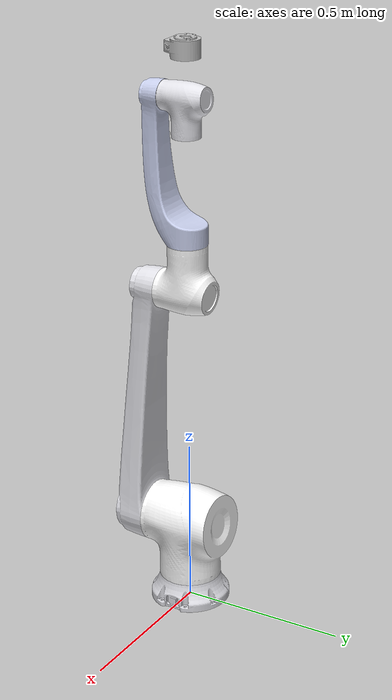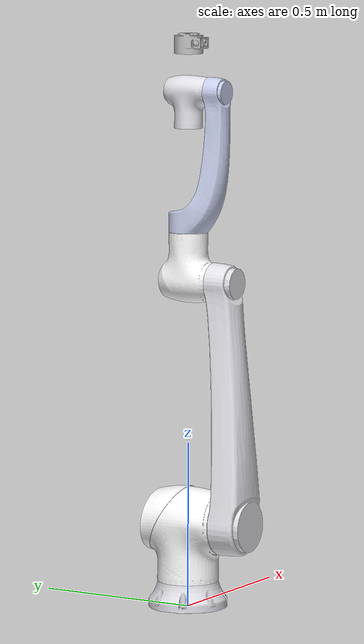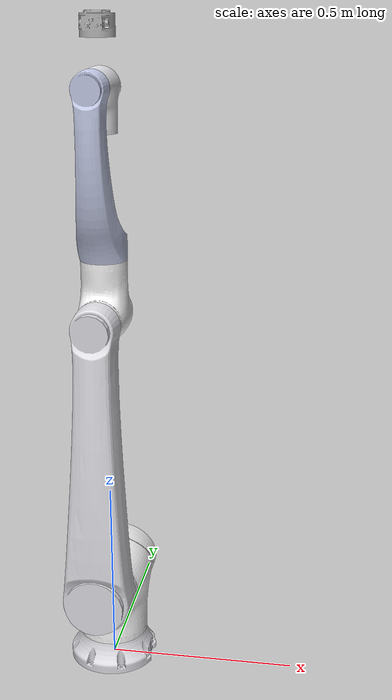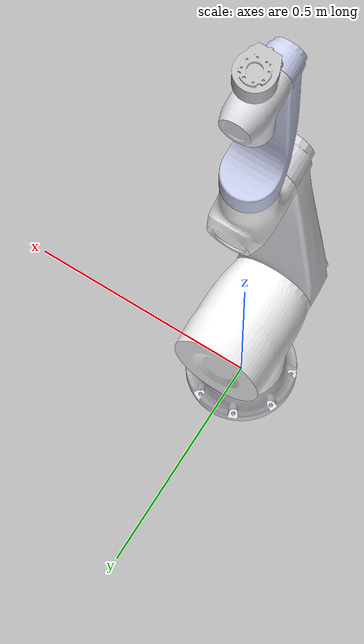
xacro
<robot
  name="elfin15" xmlns:xacro="http://www.ros.org/wiki/xacro">

  <xacro:include filename="$(find elfin_description)/urdf/materials.xacro" />

  <xacro:include filename="$(find elfin_description)/urdf/elfin_robot.gazebo" />

  <xacro:include filename="$(find elfin_description)/urdf/elfin_transmission.xacro" />

  <link name="world" />

  <joint name="world_base" type="fixed">
    <origin
      xyz="0 0 0"
      rpy="0 0 0" />
    <parent
      link="world" />
    <child
      link="elfin_base_link" />
  </joint>

  <link name="elfin_base_link" />

  <joint name="elfin_base_joint" type="fixed">
    <origin
      xyz="0 0 0"
      rpy="0 0 0" />
    <parent
      link="elfin_base_link" />
    <child
      link="elfin_base" />
  </joint>

 <link
    name="elfin_base">
    <inertial>
      <origin
        xyz="-0.00137018130408533 -2.08409607078139E-06 0.0376538014243397"
        rpy="0 0 0" />
      <mass
        value="2.70257461902285" />
      <inertia
        ixx="0.00938125784352759"
        ixy="-3.1887671545475E-09"
        ixz="-6.8867614840487E-05"
        iyy="0.00898645591278108"
        iyz="-1.99352142230335E-07"
        izz="0.015708544428067" />
    </inertial>
    <visual>
      <origin
        xyz="0 0 0"
        rpy="0 0 0" />
      <geometry>
        <mesh
          filename="package://elfin_description/meshes/elfin15/elfin_base.STL" />
      </geometry>
      <material
        name="">
        <color
          rgba="0.866666666666667 0.866666666666667 0.890196078431372 1" />
      </material>
    </visual>
    <collision>
      <origin
        xyz="0 0 0"
        rpy="0 0 0" />
      <geometry>
        <mesh
          filename="package://elfin_description/meshes/elfin15/elfin_base.STL" />
      </geometry>
    </collision>
  </link>
  <link
    name="elfin_link1">
    <inertial>
      <origin
        xyz="8.16871679225712E-06 -0.00327076216928575 -0.0357443582073996"
        rpy="0 0 0" />
      <mass
        value="9.72548992374063" />
      <inertia
        ixx="0.0877898222410778"
        ixy="7.51166191337628E-06"
        ixz="-1.02593778354047E-05"
        iyy="0.0787662782449541"
        iyz="0.00190236579914971"
        izz="0.0591572039539081" />
    </inertial>
    <visual>
      <origin
        xyz="0 0 0"
        rpy="0 0 0" />
      <geometry>
        <mesh
          filename="package://elfin_description/meshes/elfin15/elfin_link1.STL" />
      </geometry>
      <material
        name="">
        <color
          rgba="1 1 1 1" />
      </material>
    </visual>
    <collision>
      <origin
        xyz="0 0 0"
        rpy="0 0 0" />
      <geometry>
        <mesh
          filename="package://elfin_description/meshes/elfin15/elfin_link1.STL" />
      </geometry>
    </collision>
  </link>
  <joint
    name="elfin_joint1"
    type="revolute">
    <origin
      xyz="0 0 0.262"
      rpy="0 0 0" />
    <parent
      link="elfin_base" />
    <child
      link="elfin_link1" />
    <axis
      xyz="0 0 1" />
    <limit
      lower="-3.14"
      upper="3.14"
      effort="420"
      velocity="1.57" />
  </joint>
  <link
    name="elfin_link2">
    <inertial>
      <origin
        xyz="1.9322796757489E-05 0.292090106394198 0.154041257842535"
        rpy="0 0 0" />
      <mass
        value="9.54890458234143" />
      <inertia
        ixx="0.589316783120317"
        ixy="-5.67663608156346E-05"
        ixz="-4.92933877201573E-06"
        iyy="0.0224325491073289"
        iyz="0.0314559548025455"
        izz="0.596074459786394" />
    </inertial>
    <visual>
      <origin
        xyz="0 0 0"
        rpy="0 0 0" />
      <geometry>
        <mesh
          filename="package://elfin_description/meshes/elfin15/elfin_link2.STL" />
      </geometry>
      <material
        name="">
        <color
          rgba="0.890196078431372 0.890196078431372 0.913725490196078 1" />
      </material>
    </visual>
    <collision>
      <origin
        xyz="0 0 0"
        rpy="0 0 0" />
      <geometry>
        <mesh
          filename="package://elfin_description/meshes/elfin15/elfin_link2.STL" />
      </geometry>
    </collision>
  </link>
  <joint
    name="elfin_joint2"
    type="revolute">
    <origin
      xyz="0 0 0"
      rpy="1.5708 0 0" />
    <parent
      link="elfin_link1" />
    <child
      link="elfin_link2" />
    <axis
      xyz="0 0 1" />
    <limit
      lower="-2.35"
      upper="2.35"
      effort="420"
      velocity="1.57" />
  </joint>
  <link
    name="elfin_link3">
    <inertial>
      <origin
        xyz="0.0361016983818296 -3.38362974484633E-06 -0.00436863890994984"
        rpy="0 0 0" />
      <mass
        value="2.91695075996986" />
      <inertia
        ixx="0.00742981276706272"
        ixy="4.86606934151244E-07"
        ixz="-0.00053693424418515"
        iyy="0.0135717990039811"
        iyz="-2.96883650370105E-07"
        izz="0.0118099746880734" />
    </inertial>
    <visual>
      <origin
        xyz="0 0 0"
        rpy="0 0 0" />
      <geometry>
        <mesh
          filename="package://elfin_description/meshes/elfin15/elfin_link3.STL" />
      </geometry>
      <material
        name="">
        <color
          rgba="1 1 1 1" />
      </material>
    </visual>
    <collision>
      <origin
        xyz="0 0 0"
        rpy="0 0 0" />
      <geometry>
        <mesh
          filename="package://elfin_description/meshes/elfin15/elfin_link3.STL" />
      </geometry>
    </collision>
  </link>
  <joint
    name="elfin_joint3"
    type="revolute">
    <origin
      xyz="0 0.73 0"
      rpy="3.1416 0 1.5708" />
    <parent
      link="elfin_link2" />
    <child
      link="elfin_link3" />
    <axis
      xyz="0 0 1" />
    <limit
      lower="-2.61"
      upper="2.61"
      effort="200"
      velocity="1.57" />
  </joint>
  <link
    name="elfin_link4">
    <inertial>
      <origin
        xyz="3.96882664917223E-05 -0.0650155012932467 0.320832871798224"
        rpy="0 0 0" />
      <mass
        value="2.82013622854974" />
      <inertia
        ixx="0.0599767754983284"
        ixy="3.79711278862776E-06"
        ixz="-1.98444520882357E-05"
        iyy="0.055825005713191"
        iyz="0.0126917031165986"
        izz="0.0079193539729856" />
    </inertial>
    <visual>
      <origin
        xyz="0 0 0"
        rpy="0 0 0" />
      <geometry>
        <mesh
          filename="package://elfin_description/meshes/elfin15/elfin_link4.STL" />
      </geometry>
      <material
        name="">
        <color
          rgba="0.792156862745098 0.819607843137255 0.933333333333333 1" />
      </material>
    </visual>
    <collision>
      <origin
        xyz="0 0 0"
        rpy="0 0 0" />
      <geometry>
        <mesh
          filename="package://elfin_description/meshes/elfin15/elfin_link4.STL" />
      </geometry>
    </collision>
  </link>
  <joint
    name="elfin_joint4"
    type="revolute">
    <origin
      xyz="0 0 0"
      rpy="1.5708 0 1.5708" />
    <parent
      link="elfin_link3" />
    <child
      link="elfin_link4" />
    <axis
      xyz="0 0 1" />
    <limit
      lower="-3.14"
      upper="3.14"
      effort="200"
      velocity="1.57" />
  </joint>
  <link
    name="elfin_link5">
    <inertial>
      <origin
        xyz="-7.13592588147179E-06 0.0250238965255321 -0.00249029500068249"
        rpy="0 0 0" />
      <mass
        value="1.25663090248721" />
      <inertia
        ixx="0.00349957647668621"
        ixy="2.50320892962179E-07"
        ixz="4.75533746465038E-07"
        iyy="0.00202568589371655"
        iyz="-9.97554673070372E-05"
        izz="0.00273058830542026" />
    </inertial>
    <visual>
      <origin
        xyz="0 0 0"
        rpy="0 0 0" />
      <geometry>
        <mesh
          filename="package://elfin_description/meshes/elfin15/elfin_link5.STL" />
      </geometry>
      <material
        name="">
        <color
          rgba="0.890196078431372 0.890196078431372 0.913725490196078 1" />
      </material>
    </visual>
    <collision>
      <origin
        xyz="0 0 0"
        rpy="0 0 0" />
      <geometry>
        <mesh
          filename="package://elfin_description/meshes/elfin15/elfin_link5.STL" />
      </geometry>
    </collision>
  </link>
  <joint
    name="elfin_joint5"
    type="revolute">
    <origin
      xyz="0 0 0.57"
      rpy="1.5708 0 3.1416" />
    <parent
      link="elfin_link4" />
    <child
      link="elfin_link5" />
    <axis
      xyz="0 0 1" />
    <limit
      lower="-2.56"
      upper="2.56"
      effort="69"
      velocity="1.57" />
  </joint>
  <link
    name="elfin_link6">
    <inertial>
      <origin
        xyz="5.80862976798685E-06 -0.000263099303701575 0.140588330549588"
        rpy="0 0 0" />
      <mass
        value="0.340445821267154" />
      <inertia
        ixx="0.000174302732753541"
        ixy="-1.36563776666256E-08"
        ixz="2.64383795850182E-08"
        iyy="0.000178213326580043"
        iyz="-6.34435462617436E-08"
        izz="0.000299299639534556" />
    </inertial>
    <visual>
      <origin
        xyz="0 0 0"
        rpy="0 0 0" />
      <geometry>
        <mesh
          filename="package://elfin_description/meshes/elfin15/elfin_link6.STL" />
      </geometry>
      <material
        name="">
        <color
          rgba="0.752941176470588 0.752941176470588 0.752941176470588 1" />
      </material>
    </visual>
    <collision>
      <origin
        xyz="0 0 0"
        rpy="0 0 0" />
      <geometry>
        <mesh
          filename="package://elfin_description/meshes/elfin15/elfin_link6.STL" />
      </geometry>
    </collision>
  </link>
  <joint
    name="elfin_joint6"
    type="revolute">
    <origin
      xyz="0 0 0"
      rpy="1.5708 0 3.1416" />
    <parent
      link="elfin_link5" />
    <child
      link="elfin_link6" />
    <axis
      xyz="0 0 1" />
    <limit
      lower="-3.14"
      upper="3.14"
      effort="69"
      velocity="1.57"/>
  </joint>
  <link
    name="elfin_end_link"/>
  <joint
    name="elfin_end_joint"
    type="fixed">
    <origin
      xyz="0 0 0.1735"
      rpy="0 0 0" />
    <parent
      link="elfin_link6" />
    <child
      link="elfin_end_link" />
    <axis
      xyz="0 0 0" />
  </joint>

  <link name="elfin_dummy_gripper"/>

  <joint name="elfin_dummy_joint" type="fixed">
    <origin
      xyz="0 0.109 0"
      rpy="-1.5708 1.5708 0" />
    <parent
      link="elfin_link6" />
    <child
      link="elfin_dummy_gripper" />
  </joint>

</robot>

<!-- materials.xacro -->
<robot xmlns:xacro="http://www.ros.org/wiki/xacro">

  <material name="black">
    <color rgba="0.0 0.0 0.0 1.0"/>
  </material>

  <material name="blue">
    <color rgba="0.0 0.0 0.8 1.0"/>
  </material>

  <material name="green">
    <color rgba="0.0 0.8 0.0 1.0"/>
  </material>

  <material name="grey">
    <color rgba="0.2 0.2 0.2 1.0"/>
  </material>

  <material name="orange">
    <color rgba="${255/255} ${108/255} ${10/255} 1.0"/>
  </material>

  <material name="brown">
    <color rgba="${222/255} ${207/255} ${195/255} 1.0"/>
  </material>

  <material name="red">
    <color rgba="0.8 0.0 0.0 1.0"/>
  </material>

  <material name="white">
    <color rgba="1.0 1.0 1.0 1.0"/>
  </material>

  <material name="metal">
    <color rgba="0.768627450980392 0.749019607843137 0.729411764705882 1" />
  </material>

  <material name="metal_grey">
    <color rgba="0.501960784313725 0.501960784313725 0.501960784313725 1" />
  </material>

  <material name="metal_white">
    <color rgba="0.866666666666667 0.866666666666667 0.890196078431373 1" />
  </material>

</robot>
